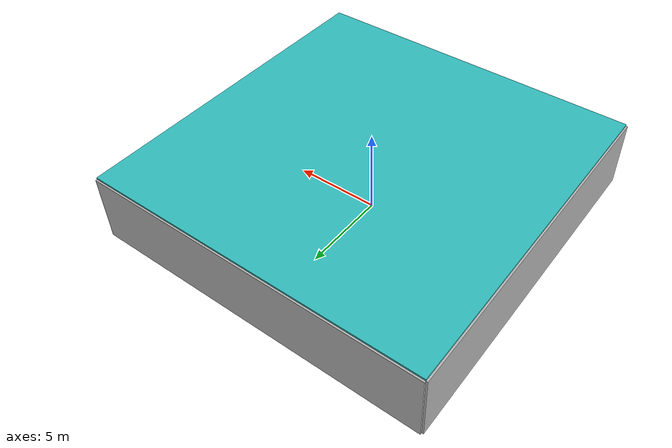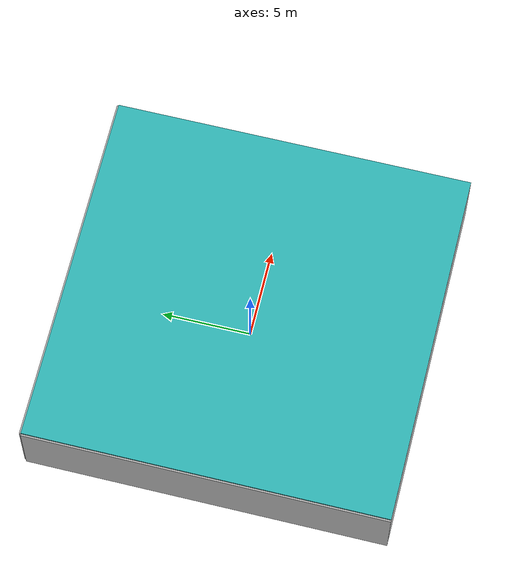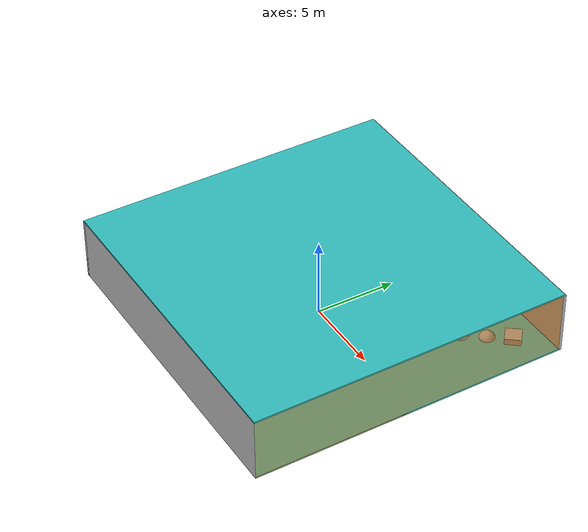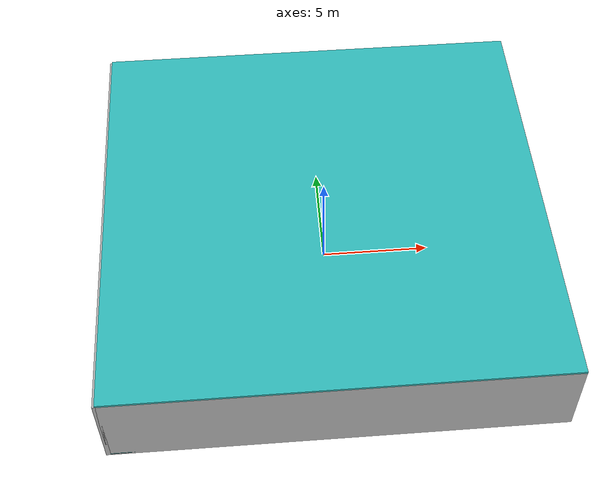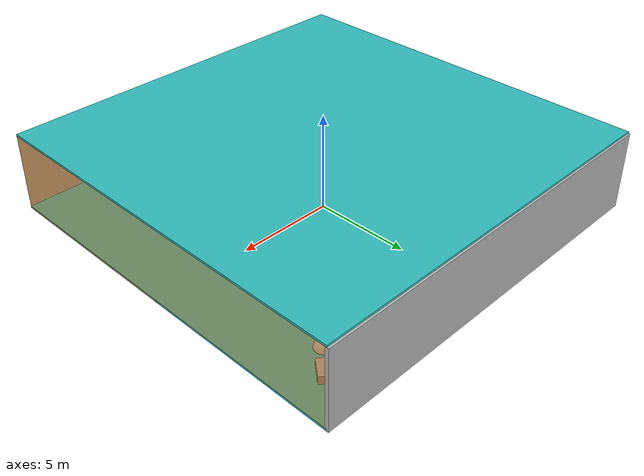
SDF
<sdf version="1.4">
 <world name="default">
  <physics type="ode">
   <max_step_size>0.001</max_step_size>
   <real_time_factor>1</real_time_factor>
   <real_time_update_rate>1000</real_time_update_rate>
   <gravity>0 0 -9.8</gravity>
  </physics>
  <scene><ambient>0.4 0.4 0.4 1</ambient><background>0.7 0.7 0.7 1</background><shadows>1</shadows></scene>
  <model name="Surrounding">
   <static>1</static>
   <link name="Ceiling">
    <collision name="Ceiling_Collision"><geometry><box><size>20 20 0.1</size></box></geometry></collision>
    <visual name="Ceiling_Visual">
     <geometry><box><size>20 20 0.1</size></box></geometry>
     <material>
      <script><uri>file://media/materials/scripts/gazebo.material</uri><name>Gazebo/TurquoiseGlow</name></script>
     </material>
    </visual>
    <pose>0 0 4.05 0 0 0</pose>
   </link>
   <link name="Wall_South">
    <collision name="Wall_South_Collision">
     <geometry><box><size>20 0 4</size></box></geometry>
     <pose>0 0 2 0 -0 0</pose>
    </collision>
    <visual name="Wall_South_Visual">
     <pose>0 0 2 0 -0 0</pose>
     <geometry><box><size>20 0 4</size></box></geometry>
     <material>
      <script><uri>file://media/materials/scripts/gazebo.material</uri><name>Gazebo/Pioneer2Body</name></script>
     </material>
    </visual>
    <velocity_decay><linear>0</linear><angular>0</angular></velocity_decay>
    <pose>0 -10 0 0 -0 0</pose>
   </link>
   <link name="Wall_East">
    <collision name="Wall_21_Collision">
     <geometry><box><size>20 0 4</size></box></geometry>
     <pose>0 0 2 0 -0 0</pose>
    </collision>
    <visual name="Wall_21_Visual">
     <pose>0 0 2 0 -0 0</pose>
     <geometry><box><size>20 0 4</size></box></geometry>
     <material>
      <script>
       <uri>file://media/materials/scripts/gazebo.material</uri>
       <name>Gazebo/OrangeTransparent</name>
      </script>
     </material>
    </visual>
    <velocity_decay><linear>0</linear><angular>0</angular></velocity_decay>
    <pose>10 0 0 0 -0 1.5708</pose>
   </link>
   <link name="Wall_North">
    <collision name="Wall_22_Collision">
     <geometry><box><size>20 0.2 4</size></box></geometry>
     <pose>0 0 2 0 -0 0</pose>
    </collision>
    <visual name="Wall_22_Visual">
     <pose>0 0 2 0 -0 0</pose>
     <geometry><box><size>20 0.2 4</size></box></geometry>
     <material>
      <script><uri>file://media/materials/scripts/gazebo.material</uri><name>Gazebo/CloudySky</name></script>
     </material>
    </visual>
    <velocity_decay><linear>0</linear><angular>0</angular></velocity_decay>
    <pose>0 10 0 0 -0 0</pose>
   </link>
   <link name="Wall_West">
    <collision name="Wall_23_Collision">
     <geometry><box><size>20 0.2 4</size></box></geometry>
     <pose>0 0 2 0 -0 0</pose>
    </collision>
    <visual name="Wall_23_Visual">
     <pose>0 0 2 0 -0 0</pose>
     <geometry><box><size>20 0.2 4</size></box></geometry>
     <material>
      <script><uri>file://media/materials/scripts/gazebo.material</uri><name>Gazebo/CloudySky</name></script>
     </material>
    </visual>
    <velocity_decay><linear>0</linear><angular>0</angular></velocity_decay>
    <pose>-10 0 0 0 0 -1.5708</pose>
   </link>
   <link name="Ground_link">
    <collision name="collision">
     <pose>0 0 .05 0 -0 0</pose>
     <geometry><box><size>20 20 0.1</size></box></geometry>
    </collision>
    <visual name="visual">
     <pose>0 0 .05 0 -0 0</pose>
     <geometry><box><size>20 20 0.1</size></box></geometry>
     <material>
      <script>
       <uri>file://media/materials/scripts/gazebo.material</uri>
       <name>Gazebo/TurquoiseGlowOutline</name>
      </script>
     </material>
    </visual>
   </link>
   <static>1</static>
  </model>
  <spherical_coordinates>
   <surface_model>EARTH_WGS84</surface_model>
   <latitude_deg>0</latitude_deg>
   <longitude_deg>0</longitude_deg>
   <elevation>0</elevation>
   <heading_deg>0</heading_deg>
  </spherical_coordinates>
  <light name="lightball_0" type="diffuse">
   <diffuse>0.8 0.8 0.8 1</diffuse>
   <specular>0.2 0.2 0.2 1</specular>
   <attenuation>
    <range>100</range>
    <constant>0.7</constant>
    <linear>0.01</linear>
    <quadratic>0.001</quadratic>
   </attenuation>
   <direction>-0.5 0.1 -0.9</direction>
   <pose>2.16497214109 -2.92340935941 3.65154889849 0 0 0</pose>
  </light>
  <light name="lightball_1" type="diffuse">
   <diffuse>0.8 0.8 0.8 1</diffuse>
   <specular>0.2 0.2 0.2 1</specular>
   <attenuation>
    <range>100</range>
    <constant>0.7</constant>
    <linear>0.01</linear>
    <quadratic>0.001</quadratic>
   </attenuation>
   <direction>-0.5 0.1 -0.9</direction>
   <pose>-8.19382713305 1.67020746129 3.33589051549 0 0 0</pose>
  </light>
  <include><uri>model://table</uri><pose>-6.81358681846 4.41002040325 0 0 0 0.895316975996</pose></include>
  <include>
   <uri>model://construction_cone</uri>
   <pose>-7.45106255303 7.02676494984 0 0 0 0.728632148514</pose>
  </include>
  <include>
   <uri>model://robocup_3Dsim_goal</uri>
   <pose>-4.63004949068 7.28047854236 0 0 0 0.989319273998</pose>
  </include>
  <include>
   <uri>model://textured_shapes</uri>
   <pose>-1.70300236697 -4.62911742575 0 0 0 0.356299454369</pose>
  </include>
  <include><uri>model://cabinet</uri><pose>-0.829434515451 2.02430373513 0 0 0 0.507999790563</pose></include>
  <include>
   <uri>model://robocup_3Dsim_goal</uri>
   <pose>2.1501876535 -1.20036155986 0 0 0 2.05463979043</pose>
  </include>
  <include><uri>model://cabinet</uri><pose>3.88954443054 -1.44580554188 0 0 0 2.24051734318</pose></include>
  <include>
   <uri>model://textured_shapes</uri>
   <pose>4.50118493352 0.796691512807 0 0 0 0.0141073681325</pose>
  </include>
  <include>
   <uri>model://textured_shapes</uri>
   <pose>7.02895628098 7.00693776967 0 0 0 2.46118754176</pose>
  </include>
 </world>
</sdf>

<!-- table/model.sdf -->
<sdf version="1.5">
  <model name="table">
    <static>true</static>
    <link name="link">
      <collision name="surface">
        <pose>0 0 1.0 0 0 0</pose>
        <geometry>
          <box>
            <size>1.5 0.8 0.03</size>
          </box>
        </geometry>
        <surface>
          <friction>
            <ode>
              <mu>0.6</mu>
              <mu2>0.6</mu2>
            </ode>
          </friction>
        </surface>
      </collision>
      <visual name="visual1">
        <pose>0 0 1.0 0 0 0</pose>
        <geometry>
          <box>
            <size>1.5 0.8 0.03</size>
          </box>
        </geometry>
        <material>
          <script>
            <uri>model://media/materials/scripts/gazebo.material</uri>
            <name>Gazebo/Wood</name>
          </script>
        </material>
      </visual>
      <collision name="front_left_leg">
        <pose>0.68 0.38 0.5 0 0 0</pose>
        <geometry>
          <cylinder>
            <radius>0.02</radius>
            <length>1.0</length>
          </cylinder>
        </geometry>
      </collision>
      <visual name="front_left_leg">
        <pose>0.68 0.38 0.5 0 0 0</pose>
        <geometry>
          <cylinder>
            <radius>0.02</radius>
            <length>1.0</length>
          </cylinder>
        </geometry>
        <material>
          <script>
            <uri>model://media/materials/scripts/gazebo.material</uri>
            <name>Gazebo/Grey</name>
          </script>
        </material>
      </visual>
      <collision name="front_right_leg">
        <pose>0.68 -0.38 0.5 0 0 0</pose>
        <geometry>
          <cylinder>
            <radius>0.02</radius>
            <length>1.0</length>
          </cylinder>
        </geometry>
      </collision>
      <visual name="front_right_leg">
        <pose>0.68 -0.38 0.5 0 0 0</pose>
        <geometry>
          <cylinder>
            <radius>0.02</radius>
            <length>1.0</length>
          </cylinder>
        </geometry>
        <material>
          <script>
            <uri>model://media/materials/scripts/gazebo.material</uri>
            <name>Gazebo/Grey</name>
          </script>
        </material>
      </visual>
      <collision name="back_right_leg">
        <pose>-0.68 -0.38 0.5 0 0 0</pose>
        <geometry>
          <cylinder>
            <radius>0.02</radius>
            <length>1.0</length>
          </cylinder>
        </geometry>
      </collision>
      <visual name="back_right_leg">
        <pose>-0.68 -0.38 0.5 0 0 0</pose>
        <geometry>
          <cylinder>
            <radius>0.02</radius>
            <length>1.0</length>
          </cylinder>
        </geometry>
        <material>
          <script>
            <uri>model://media/materials/scripts/gazebo.material</uri>
            <name>Gazebo/Grey</name>
          </script>
        </material>
      </visual>
      <collision name="back_left_leg">
        <pose>-0.68 0.38 0.5 0 0 0</pose>
        <geometry>
          <cylinder>
            <radius>0.02</radius>
            <length>1.0</length>
          </cylinder>
        </geometry>
      </collision>
      <visual name="back_left_leg">
        <pose>-0.68 0.38 0.5 0 0 0</pose>
        <geometry>
          <cylinder>
            <radius>0.02</radius>
            <length>1.0</length>
          </cylinder>
        </geometry>
        <material>
          <script>
            <uri>model://media/materials/scripts/gazebo.material</uri>
            <name>Gazebo/Grey</name>
          </script>
        </material>
      </visual>
    </link>
  </model>
</sdf>

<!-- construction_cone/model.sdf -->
<sdf version="1.5">
  <model name="Construction Cone">
    <link name="link">
      <collision name="collision">
        <geometry>
          <mesh>
            <scale>10 10 10</scale>
            <uri>file://isr-testbed/construction_cone/meshes/construction_cone.dae</uri>
          </mesh>
        </geometry>
      </collision>
      <visual name="visual">
        <geometry>
          <mesh>
            <scale>10 10 10</scale>
            <uri>file://isr-testbed/construction_cone/meshes/construction_cone.dae</uri>
          </mesh>
        </geometry>
      </visual>
    </link>
  </model>
</sdf>

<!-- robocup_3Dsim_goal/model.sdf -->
<sdf version="1.5">
  <model name="robocup_3d_goal">
    <static>true</static>
    <link name="left_post">
      <pose>0 1.05 0.45 0 0 0</pose>
      <collision name="collision">
        <geometry>
          <cylinder>
            <radius>0.05</radius>
            <length>0.9</length>
          </cylinder>
        </geometry>
      </collision>
      <visual name="visual">
        <geometry>
          <cylinder>
            <radius>0.05</radius>
            <length>0.9</length>
          </cylinder>
        </geometry>
        <material>
          <script>
            <uri>file://media/materials/scripts/gazebo.material</uri>
            <name>Gazebo/ZincYellow</name>
          </script>
        </material>
      </visual>
    </link>
    <link name="left_support_horiz_lower">
      <pose>0.30 1.05 0.01 0 0 0</pose>
      <collision name="collision">
        <geometry>
          <box>
            <size>0.50 0.02 0.02</size>
          </box>
        </geometry>
      </collision>
      <visual name="visual">
        <geometry>
          <box>
            <size>0.50 0.02 0.02</size>
          </box>
        </geometry>
        <material>
          <script>
            <uri>file://media/materials/scripts/gazebo.material</uri>
            <name>Gazebo/White</name>
          </script>
        </material>
      </visual>
    </link>
    <link name="left_support_horiz_upper">
      <pose>0.30 1.05 0.79 0 0 0</pose>
      <collision name="collision">
        <geometry>
          <box>
            <size>0.50 0.02 0.02</size>
          </box>
        </geometry>
      </collision>
      <visual name="visual">
        <geometry>
          <box>
            <size>0.50 0.02 0.02</size>
          </box>
        </geometry>
        <material>
          <script>
            <uri>file://media/materials/scripts/gazebo.material</uri>
            <name>Gazebo/White</name>
          </script>
        </material>
      </visual>
    </link>
    <link name="left_support_vertical">
      <pose>0.56 1.05 0.4 0 1.5708 0</pose>
      <collision name="collision">
        <geometry>
          <box>
            <size>0.80 0.02 0.02</size>
          </box>
        </geometry>
      </collision>
      <visual name="visual">
        <geometry>
          <box>
            <size>0.80 0.02 0.02</size>
          </box>
        </geometry>
        <material>
          <script>
            <uri>file://media/materials/scripts/gazebo.material</uri>
            <name>Gazebo/White</name>
          </script>
        </material>
      </visual>
    </link>
    <link name="right_support_horiz_lower">
      <pose>0.30 -1.05 0.01 0 0 0</pose>
      <collision name="collision">
        <geometry>
          <box>
            <size>0.50 0.02 0.02</size>
          </box>
        </geometry>
      </collision>
      <visual name="visual">
        <geometry>
          <box>
            <size>0.50 0.02 0.02</size>
          </box>
        </geometry>
        <material>
          <script>
            <uri>file://media/materials/scripts/gazebo.material</uri>
            <name>Gazebo/White</name>
          </script>
        </material>
      </visual>
    </link>
    <link name="right_support_horiz_upper">
      <pose>0.30 -1.05 0.79 0 0 0</pose>
      <collision name="collision">
        <geometry>
          <box>
            <size>0.50 0.02 0.02</size>
          </box>
        </geometry>
      </collision>
      <visual name="visual">
        <geometry>
          <box>
            <size>0.50 0.02 0.02</size>
          </box>
        </geometry>
        <material>
          <script>
            <uri>file://media/materials/scripts/gazebo.material</uri>
            <name>Gazebo/White</name>
          </script>
        </material>
      </visual>
    </link>
    <link name="right_support_vertical">
      <pose>0.56 -1.05 0.4 0 1.5708 0</pose>
      <collision name="collision">
        <geometry>
          <box>
            <size>0.80 0.02 0.02</size>
          </box>
        </geometry>
      </collision>
      <visual name="visual">
        <geometry>
          <box>
            <size>0.80 0.02 0.02</size>
          </box>
        </geometry>
        <material>
          <script>
            <uri>file://media/materials/scripts/gazebo.material</uri>
            <name>Gazebo/White</name>
          </script>
        </material>
      </visual>
    </link>
    <link name="center_support_horiz_lower">
      <pose>0.56 0 0.01 0 1.5708 0</pose>
      <collision name="collision">
        <geometry>
          <box>
            <size>0.02 2.08 0.02</size>
          </box>
        </geometry>
      </collision>
      <visual name="visual">
        <geometry>
          <box>
            <size>0.02 2.08 0.02</size>
          </box>
        </geometry>
        <material>
          <script>
            <uri>file://media/materials/scripts/gazebo.material</uri>
            <name>Gazebo/White</name>
          </script>
        </material>
      </visual>
    </link>
    <link name="center_support_horiz_upper">
      <pose>0.56 0 0.79 0 1.5708 0</pose>
      <collision name="collision">
        <geometry>
          <box>
            <size>0.02 2.08 0.02</size>
          </box>
        </geometry>
      </collision>
      <visual name="visual">
        <geometry>
          <box>
            <size>0.02 2.08 0.02</size>
          </box>
        </geometry>
        <material>
          <script>
            <uri>file://media/materials/scripts/gazebo.material</uri>
            <name>Gazebo/White</name>
          </script>
        </material>
      </visual>
    </link>
    <link name="right_post">
      <pose>0 -1.05 0.45 0 0 0</pose>
      <collision name="collision">
        <geometry>
          <cylinder>
            <radius>0.05</radius>
            <length>0.9</length>
          </cylinder>
        </geometry>
      </collision>
      <visual name="visual">
        <geometry>
          <cylinder>
            <radius>0.05</radius>
            <length>0.9</length>
          </cylinder>
        </geometry>
        <material>
          <script>
            <uri>file://media/materials/scripts/gazebo.material</uri>
            <name>Gazebo/ZincYellow</name>
          </script>
        </material>
      </visual>
    </link>
    <link name="crossbar">
      <pose>0 0 0.85 1.57 1.57 0</pose>
      <collision name="collision">
        <geometry>
          <cylinder>
            <radius>0.05</radius>
            <length>2.0</length>
          </cylinder>
        </geometry>
      </collision>
      <visual name="visual">
        <geometry>
          <cylinder>
            <radius>0.05</radius>
            <length>2.0</length>
          </cylinder>
        </geometry>
        <material>
          <script>
            <uri>file://media/materials/scripts/gazebo.material</uri>
            <name>Gazebo/ZincYellow</name>
          </script>
        </material>
      </visual>
    </link>
    <link name="center_net">
      <pose>0.56 0 0.40 0 0 0</pose>
      <collision name="collision">
        <geometry>
          <box>
            <size>0.01 2.1 0.80</size>
          </box>
        </geometry>
      </collision>
      <visual name="visual">
        <geometry>
          <box>
            <size>0.01 2.1 0.80</size>
          </box>
        </geometry>
        <material>
          <script>
            <uri>model://../model_source/models/robocup09_spl_field/materials/scripts/</uri>
            <uri>model://../model_source/models/robocup09_spl_field/materials/textures/</uri>
            <name>RoboCup/Net</name>
          </script>
        </material>
      </visual>
    </link>
    <link name="left_net">
      <pose>0.30 1.05 0.40 0 0 0</pose>
      <collision name="collision">
        <geometry>
          <box>
            <size>0.50 0.01 0.76</size>
          </box>
        </geometry>
      </collision>
      <visual name="visual">
        <geometry>
          <box>
            <size>0.50 0.01 0.76</size>
          </box>
        </geometry>
        <material>
          <script>
            <uri>model://../model_source/models/robocup09_spl_field/materials/scripts/</uri>
            <uri>model://../model_source/models/robocup09_spl_field/materials/textures/</uri>
            <name>RoboCup/Net</name>
          </script>
        </material>
      </visual>
    </link>
    <link name="right_net">
      <pose>0.30 -1.05 0.40 0 0 0</pose>
      <collision name="collision">
        <geometry>
          <box>
            <size>0.50 0.01 0.76</size>
          </box>
        </geometry>
      </collision>
      <visual name="visual">
        <geometry>
          <box>
            <size>0.50 0.01 0.76</size>
          </box>
        </geometry>
        <material>
          <script>
            <uri>model://../model_source/models/robocup09_spl_field/materials/scripts/</uri>
            <uri>model://../model_source/models/robocup09_spl_field/materials/textures/</uri>
            <name>RoboCup/Net</name>
          </script>
        </material>
      </visual>
    </link>
  </model>
</sdf>

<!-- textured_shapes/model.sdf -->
<sdf version="1.6">
  <model name="textured_shapes">
    <pose>0 0 0.5 0 0 0</pose>
    <link name="box">
      <pose>0 -1.5 0 0 0 0</pose>
      <collision name="collision">
        <geometry>
          <box>
            <size>1 1 1</size>
          </box>
        </geometry>
      </collision>
      <visual name="visual">
        <geometry>
          <box>
            <size>1 1 1</size>
          </box>
        </geometry>
        <material>
          <script>
            <uri>model://../model_source/models/textured_shapes/materials/scripts</uri>
            <uri>model://../model_source/models/textured_shapes/materials/textures</uri>
            <name>TexturedShape/Squares</name>
          </script>
        </material>
      </visual>
    </link>
    <link name="sphere">
      <collision name="collision">
        <geometry>
          <sphere>
            <radius>0.5</radius>
          </sphere>
        </geometry>
      </collision>
      <visual name="visual">
        <geometry>
          <sphere>
            <radius>0.5</radius>
          </sphere>
        </geometry>
        <material>
          <script>
            <uri>model://../model_source/models/textured_shapes/materials/scripts</uri>
            <uri>model://../model_source/models/textured_shapes/materials/textures</uri>
            <name>TexturedShape/Squares</name>
          </script>
        </material>
      </visual>
    </link>
    <link name="cylinder">
      <pose>0 1.5 0 0 0 0</pose>
      <collision name="collision">
        <geometry>
          <cylinder>
            <radius>0.5</radius>
            <length>1</length>
          </cylinder>
        </geometry>
      </collision>
      <visual name="visual">
        <geometry>
          <cylinder>
            <radius>0.5</radius>
            <length>1</length>
          </cylinder>
        </geometry>
        <material>
          <script>
            <uri>model://../model_source/models/textured_shapes/materials/scripts</uri>
            <uri>model://../model_source/models/textured_shapes/materials/textures</uri>
            <name>TexturedShape/Squares</name>
          </script>
        </material>
      </visual>
    </link>
  </model>
</sdf>

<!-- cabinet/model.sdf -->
<sdf version="1.5">
  <model name="cabinet">
    <static>true</static>
    <link name="cabinet_bottom_plate">
      <inertial>
        <pose>0 0 -1 0 0 0</pose>
        <inertia>
          <ixx>2.050000</ixx>
          <ixy>0</ixy>
          <ixz>0</ixz>
          <iyy>2.050000</iyy>
          <iyz>0</iyz>
          <izz>2.050000</izz>
        </inertia>
        <mass>25.000000</mass>
      </inertial>
      <collision name="cabinet_bottom_plate_geom">
        <pose>0 0 0.010000 0 0 0</pose>
        <geometry>
          <box>
            <size>0.450000 0.450000 0.020000</size>
          </box>
        </geometry>
      </collision>
      <visual name="cabinet_bottom_plate_geom_visual">
        <pose>0 0 0.010000 0 0 0</pose>
        <geometry>
          <box>
            <size>0.450000 0.450000 0.020000</size>
          </box>
        </geometry>
        <material>
          <script>
            <uri>model://media/materials/scripts/gazebo.material</uri>
            <name>Gazebo/Wood</name>
          </script>
        </material>
      </visual>
      <collision name="cabinet_bottom_plate_geom_cabinet_back_plate">
        <pose>0.235000 0 0.510000 0 0 0</pose>
        <geometry>
          <box>
            <size>0.020000 0.450000 1.020000</size>
          </box>
        </geometry>
      </collision>
      <visual name="cabinet_bottom_plate_geom_cabinet_back_plate_visual">
        <pose>0.235000 0 0.510000 0 0 0</pose>
        <geometry>
          <box>
            <size>0.020000 0.450000 1.020000</size>
          </box>
        </geometry>
        <material>
          <script>
            <uri>model://media/materials/scripts/gazebo.material</uri>
            <name>Gazebo/Wood</name>
          </script>
        </material>
      </visual>
      <collision name="cabinet_bottom_plate_geom_cabinet_left_plate">
        <pose>0 0.235000 0.510000 0 0 0</pose>
        <geometry>
          <box>
            <size>0.450000 0.020000 1.020000</size>
          </box>
        </geometry>
      </collision>
      <visual name="cabinet_bottom_plate_geom_cabinet_left_plate_visual">
        <pose>0 0.235000 0.510000 0 0 0</pose>
        <geometry>
          <box>
            <size>0.450000 0.020000 1.020000</size>
          </box>
        </geometry>
        <material>
          <script>
            <uri>model://media/materials/scripts/gazebo.material</uri>
            <name>Gazebo/Wood</name>
          </script>
        </material>
      </visual>
      <collision name="cabinet_bottom_plate_geom_cabinet_middle_plate">
        <pose>0 0 0.510000 0 0 0</pose>
        <geometry>
          <box>
            <size>0.450000 0.450000 0.020000</size>
          </box>
        </geometry>
      </collision>
      <visual name="cabinet_bottom_plate_geom_cabinet_middle_plate_visual">
        <pose>0 0 0.510000 0 0 0</pose>
        <geometry>
          <box>
            <size>0.450000 0.450000 0.020000</size>
          </box>
        </geometry>
        <material>
          <script>
            <uri>model://media/materials/scripts/gazebo.material</uri>
            <name>Gazebo/Wood</name>
          </script>
        </material>
      </visual>
      <collision name="cabinet_bottom_plate_geom_cabinet_right_plate">
        <pose>0 -0.235000 0.510000 0 0 0</pose>
        <geometry>
          <box>
            <size>0.450000 0.020000 1.020000</size>
          </box>
        </geometry>
      </collision>
      <visual name="cabinet_bottom_plate_geom_cabinet_right_plate_visual">
        <pose>0 -0.235000 0.510000 0 0 0</pose>
        <geometry>
          <box>
            <size>0.450000 0.020000 1.020000</size>
          </box>
        </geometry>
        <material>
          <script>
            <uri>model://media/materials/scripts/gazebo.material</uri>
            <name>Gazebo/Wood</name>
          </script>
        </material>
      </visual>
      <collision name="cabinet_bottom_plate_geom_cabinet_top_plate">
        <pose>0 0 1.010000 0 0 0</pose>
        <geometry>
          <box>
            <size>0.450000 0.450000 0.020000</size>
          </box>
        </geometry>
      </collision>
      <visual name="cabinet_bottom_plate_geom_cabinet_top_plate_visual">
        <pose>0 0 1.010000 0 0 0</pose>
        <geometry>
          <box>
            <size>0.450000 0.450000 0.020000</size>
          </box>
        </geometry>
        <material>
          <script>
            <uri>model://media/materials/scripts/gazebo.material</uri>
            <name>Gazebo/Wood</name>
          </script>
        </material>
      </visual>
    </link>
  </model>
</sdf>
